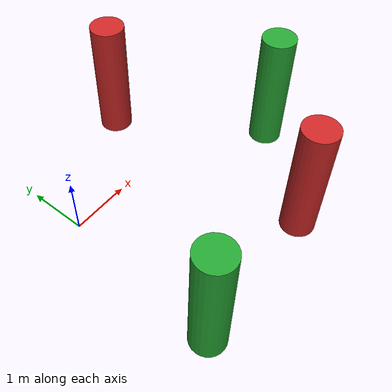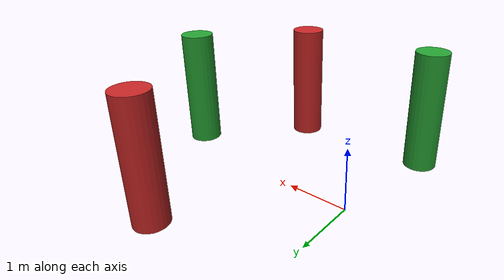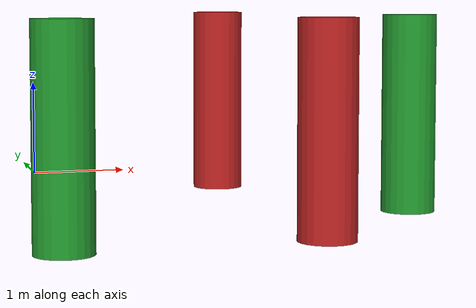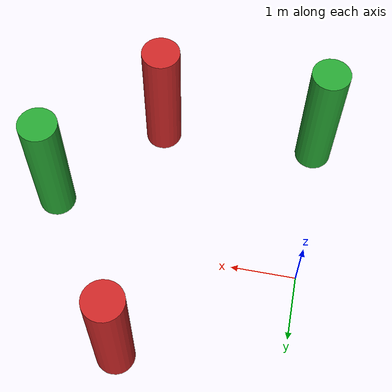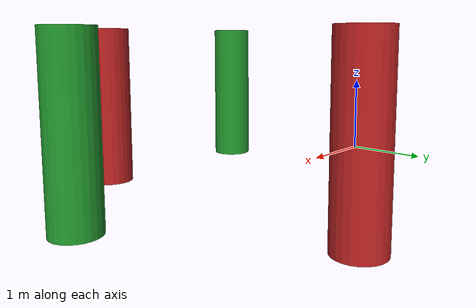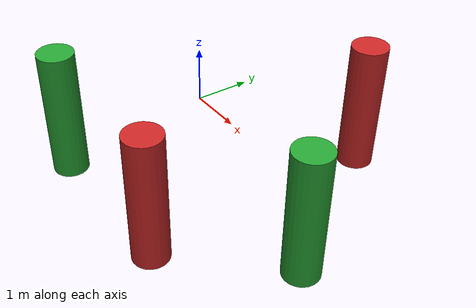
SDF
<?xml version='1.0'?>
<sdf version='1.7'>
  <model name='Challenge_4'>
    <link name='link_clone'>
      <inertial>
        <mass>1</mass>
        <inertia>
          <ixx>0.145833</ixx>
          <ixy>0</ixy>
          <ixz>0</ixz>
          <iyy>0.145833</iyy>
          <iyz>0</iyz>
          <izz>0.125</izz>
        </inertia>
        <pose>0 0 0 0 -0 0</pose>
      </inertial>
      <self_collide>0</self_collide>
      <enable_wind>0</enable_wind>
      <kinematic>0</kinematic>
      <pose>2.5027 1.55831 0.654335 0 -0 0</pose>
      <gravity>1</gravity>
      <visual name='visual'>
        <geometry>
          <cylinder>
            <radius>0.3</radius>
            <length>2.2</length>
          </cylinder>
        </geometry>
        <material>
          <script>
            <name>Gazebo/Red</name>
            <uri>file://media/materials/scripts/gazebo.material</uri>
          </script>
          <shader type='pixel'>
            <normal_map>__default__</normal_map>
          </shader>
          <ambient>1 0 0 1</ambient>
          <diffuse>1 0 0 1</diffuse>
          <specular>1 0 0 1</specular>
          <emissive>1 0 0 1</emissive>
        </material>
        <pose>0 0 0 0 -0 0</pose>
        <transparency>0</transparency>
        <cast_shadows>1</cast_shadows>
      </visual>
      <collision name='collision'>
        <laser_retro>0</laser_retro>
        <max_contacts>10</max_contacts>
        <pose>0 0 0 0 -0 0</pose>
        <geometry>
          <cylinder>
            <radius>0.3</radius>
            <length>2.2</length>
          </cylinder>
        </geometry>
        <surface>
          <friction>
            <ode>
              <mu>1</mu>
              <mu2>1</mu2>
              <fdir1>0 0 0</fdir1>
              <slip1>0</slip1>
              <slip2>0</slip2>
            </ode>
            <torsional>
              <coefficient>1</coefficient>
              <patch_radius>0</patch_radius>
              <surface_radius>0</surface_radius>
              <use_patch_radius>1</use_patch_radius>
              <ode>
                <slip>0</slip>
              </ode>
            </torsional>
          </friction>
          <bounce>
            <restitution_coefficient>0</restitution_coefficient>
            <threshold>1e+06</threshold>
          </bounce>
          <contact>
            <collide_without_contact>0</collide_without_contact>
            <collide_without_contact_bitmask>1</collide_without_contact_bitmask>
            <collide_bitmask>1</collide_bitmask>
            <ode>
              <soft_cfm>0</soft_cfm>
              <soft_erp>0.2</soft_erp>
              <kp>1e+13</kp>
              <kd>1</kd>
              <max_vel>0.01</max_vel>
              <min_depth>0</min_depth>
            </ode>
            <bullet>
              <split_impulse>1</split_impulse>
              <split_impulse_penetration_threshold>-0.01</split_impulse_penetration_threshold>
              <soft_cfm>0</soft_cfm>
              <soft_erp>0.2</soft_erp>
              <kp>1e+13</kp>
              <kd>1</kd>
            </bullet>
          </contact>
        </surface>
      </collision>
    </link>
    <link name='link_clone_clone'>
      <inertial>
        <mass>1</mass>
        <inertia>
          <ixx>0.145833</ixx>
          <ixy>0</ixy>
          <ixz>0</ixz>
          <iyy>0.145833</iyy>
          <iyz>0</iyz>
          <izz>0.125</izz>
        </inertia>
        <pose>0 0 0 0 -0 0</pose>
      </inertial>
      <self_collide>0</self_collide>
      <enable_wind>0</enable_wind>
      <kinematic>0</kinematic>
      <pose>2.56787 -2.54087 0.654335 0 -0 0</pose>
      <gravity>1</gravity>
      <visual name='visual'>
        <geometry>
          <cylinder>
            <radius>0.3</radius>
            <length>2.2</length>
          </cylinder>
        </geometry>
        <material>
          <script>
            <name>Gazebo/Red</name>
            <uri>file://media/materials/scripts/gazebo.material</uri>
          </script>
          <shader type='pixel'>
            <normal_map>__default__</normal_map>
          </shader>
          <ambient>1 0 0 1</ambient>
          <diffuse>1 0 0 1</diffuse>
          <specular>1 0 0 1</specular>
          <emissive>1 0 0 1</emissive>
        </material>
        <pose>0 0 0 0 -0 0</pose>
        <transparency>0</transparency>
        <cast_shadows>1</cast_shadows>
      </visual>
      <collision name='collision'>
        <laser_retro>0</laser_retro>
        <max_contacts>10</max_contacts>
        <pose>0 0 0 0 -0 0</pose>
        <geometry>
          <cylinder>
            <radius>0.3</radius>
            <length>2.2</length>
          </cylinder>
        </geometry>
        <surface>
          <friction>
            <ode>
              <mu>1</mu>
              <mu2>1</mu2>
              <fdir1>0 0 0</fdir1>
              <slip1>0</slip1>
              <slip2>0</slip2>
            </ode>
            <torsional>
              <coefficient>1</coefficient>
              <patch_radius>0</patch_radius>
              <surface_radius>0</surface_radius>
              <use_patch_radius>1</use_patch_radius>
              <ode>
                <slip>0</slip>
              </ode>
            </torsional>
          </friction>
          <bounce>
            <restitution_coefficient>0</restitution_coefficient>
            <threshold>1e+06</threshold>
          </bounce>
          <contact>
            <collide_without_contact>0</collide_without_contact>
            <collide_without_contact_bitmask>1</collide_without_contact_bitmask>
            <collide_bitmask>1</collide_bitmask>
            <ode>
              <soft_cfm>0</soft_cfm>
              <soft_erp>0.2</soft_erp>
              <kp>1e+13</kp>
              <kd>1</kd>
              <max_vel>0.01</max_vel>
              <min_depth>0</min_depth>
            </ode>
            <bullet>
              <split_impulse>1</split_impulse>
              <split_impulse_penetration_threshold>-0.01</split_impulse_penetration_threshold>
              <soft_cfm>0</soft_cfm>
              <soft_erp>0.2</soft_erp>
              <kp>1e+13</kp>
              <kd>1</kd>
            </bullet>
          </contact>
        </surface>
      </collision>
    </link>
    <link name='link_clone_clone_0'>
      <inertial>
        <mass>1</mass>
        <inertia>
          <ixx>0.145833</ixx>
          <ixy>0</ixy>
          <ixz>0</ixz>
          <iyy>0.145833</iyy>
          <iyz>0</iyz>
          <izz>0.125</izz>
        </inertia>
        <pose>0 0 0 0 -0 0</pose>
      </inertial>
      <self_collide>0</self_collide>
      <enable_wind>0</enable_wind>
      <kinematic>0</kinematic>
      <pose>4.06864 -0.925348 0.654335 0 -0 0</pose>
      <gravity>1</gravity>
      <visual name='visual'>
        <geometry>
          <cylinder>
            <radius>0.3</radius>
            <length>2.2</length>
          </cylinder>
        </geometry>
        <material>
          <script>
            <name>Gazebo/Green</name>
            <uri>file://media/materials/scripts/gazebo.material</uri>
          </script>
          <shader type='pixel'>
            <normal_map>__default__</normal_map>
          </shader>
          <ambient>0 1 0 1</ambient>
          <diffuse>0 1 0 1</diffuse>
          <specular>0 1 0 1</specular>
          <emissive>0 1 0 1</emissive>
        </material>
        <pose>0 0 0 0 -0 0</pose>
        <transparency>0</transparency>
        <cast_shadows>1</cast_shadows>
      </visual>
      <collision name='collision'>
        <laser_retro>0</laser_retro>
        <max_contacts>10</max_contacts>
        <pose>0 0 0 0 -0 0</pose>
        <geometry>
          <cylinder>
            <radius>0.3</radius>
            <length>2.2</length>
          </cylinder>
        </geometry>
        <surface>
          <friction>
            <ode>
              <mu>1</mu>
              <mu2>1</mu2>
              <fdir1>0 0 0</fdir1>
              <slip1>0</slip1>
              <slip2>0</slip2>
            </ode>
            <torsional>
              <coefficient>1</coefficient>
              <patch_radius>0</patch_radius>
              <surface_radius>0</surface_radius>
              <use_patch_radius>1</use_patch_radius>
              <ode>
                <slip>0</slip>
              </ode>
            </torsional>
          </friction>
          <bounce>
            <restitution_coefficient>0</restitution_coefficient>
            <threshold>1e+06</threshold>
          </bounce>
          <contact>
            <collide_without_contact>0</collide_without_contact>
            <collide_without_contact_bitmask>1</collide_without_contact_bitmask>
            <collide_bitmask>1</collide_bitmask>
            <ode>
              <soft_cfm>0</soft_cfm>
              <soft_erp>0.2</soft_erp>
              <kp>1e+13</kp>
              <kd>1</kd>
              <max_vel>0.01</max_vel>
              <min_depth>0</min_depth>
            </ode>
            <bullet>
              <split_impulse>1</split_impulse>
              <split_impulse_penetration_threshold>-0.01</split_impulse_penetration_threshold>
              <soft_cfm>0</soft_cfm>
              <soft_erp>0.2</soft_erp>
              <kp>1e+13</kp>
              <kd>1</kd>
            </bullet>
          </contact>
        </surface>
      </collision>
    </link>
    <link name='link_clone_clone_0_clone'>
      <inertial>
        <mass>1</mass>
        <inertia>
          <ixx>0.145833</ixx>
          <ixy>0</ixy>
          <ixz>0</ixz>
          <iyy>0.145833</iyy>
          <iyz>0</iyz>
          <izz>0.125</izz>
        </inertia>
        <pose>0 0 0 0 -0 0</pose>
      </inertial>
      <self_collide>0</self_collide>
      <enable_wind>0</enable_wind>
      <kinematic>0</kinematic>
      <pose>-0.040029 -2.60252 0.654335 0 -0 0</pose>
      <gravity>1</gravity>
      <visual name='visual'>
        <geometry>
          <cylinder>
            <radius>0.3</radius>
            <length>2.2</length>
          </cylinder>
        </geometry>
        <material>
          <script>
            <name>Gazebo/Green</name>
            <uri>file://media/materials/scripts/gazebo.material</uri>
          </script>
          <shader type='pixel'>
            <normal_map>__default__</normal_map>
          </shader>
          <ambient>0 1 0 1</ambient>
          <diffuse>0 1 0 1</diffuse>
          <specular>0 1 0 1</specular>
          <emissive>0 1 0 1</emissive>
        </material>
        <pose>0 0 0 0 -0 0</pose>
        <transparency>0</transparency>
        <cast_shadows>1</cast_shadows>
      </visual>
      <collision name='collision'>
        <laser_retro>0</laser_retro>
        <max_contacts>10</max_contacts>
        <pose>0 0 0 0 -0 0</pose>
        <geometry>
          <cylinder>
            <radius>0.3</radius>
            <length>2.2</length>
          </cylinder>
        </geometry>
        <surface>
          <friction>
            <ode>
              <mu>1</mu>
              <mu2>1</mu2>
              <fdir1>0 0 0</fdir1>
              <slip1>0</slip1>
              <slip2>0</slip2>
            </ode>
            <torsional>
              <coefficient>1</coefficient>
              <patch_radius>0</patch_radius>
              <surface_radius>0</surface_radius>
              <use_patch_radius>1</use_patch_radius>
              <ode>
                <slip>0</slip>
              </ode>
            </torsional>
          </friction>
          <bounce>
            <restitution_coefficient>0</restitution_coefficient>
            <threshold>1e+06</threshold>
          </bounce>
          <contact>
            <collide_without_contact>0</collide_without_contact>
            <collide_without_contact_bitmask>1</collide_without_contact_bitmask>
            <collide_bitmask>1</collide_bitmask>
            <ode>
              <soft_cfm>0</soft_cfm>
              <soft_erp>0.2</soft_erp>
              <kp>1e+13</kp>
              <kd>1</kd>
              <max_vel>0.01</max_vel>
              <min_depth>0</min_depth>
            </ode>
            <bullet>
              <split_impulse>1</split_impulse>
              <split_impulse_penetration_threshold>-0.01</split_impulse_penetration_threshold>
              <soft_cfm>0</soft_cfm>
              <soft_erp>0.2</soft_erp>
              <kp>1e+13</kp>
              <kd>1</kd>
            </bullet>
          </contact>
        </surface>
      </collision>
    </link>
    <static>0</static>
    <allow_auto_disable>1</allow_auto_disable>
  </model>
</sdf>
